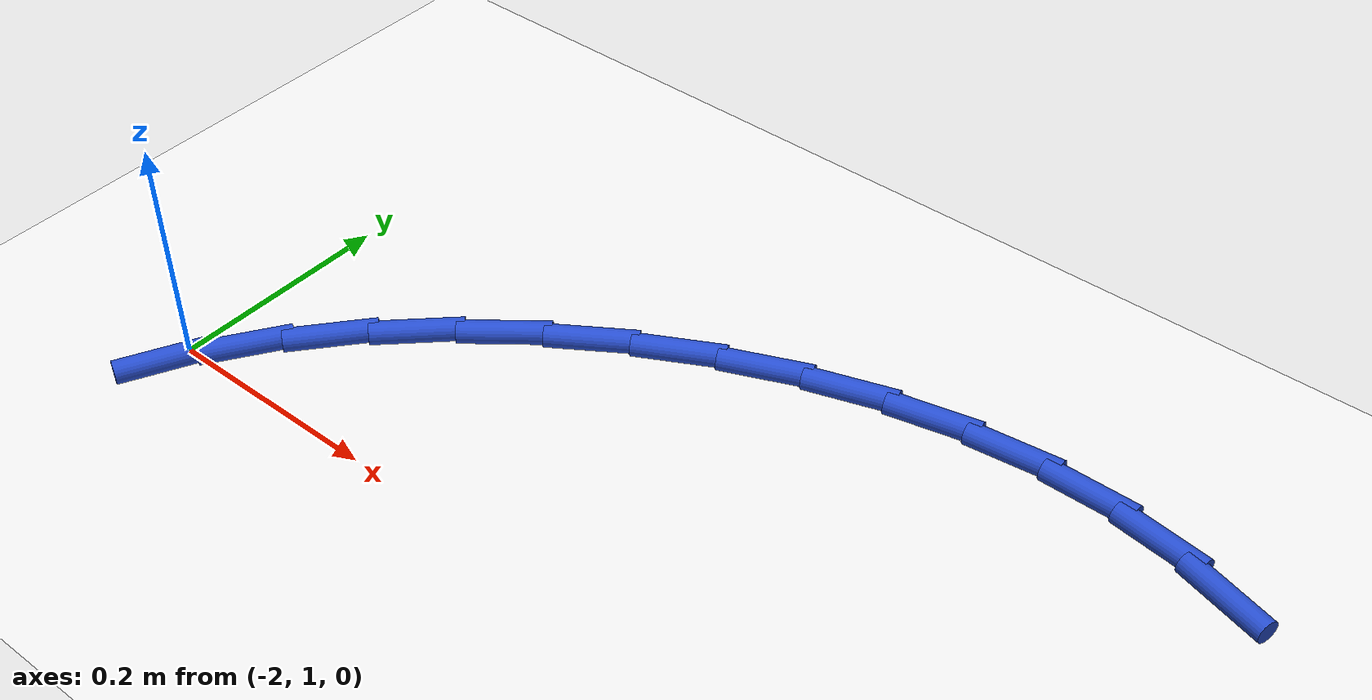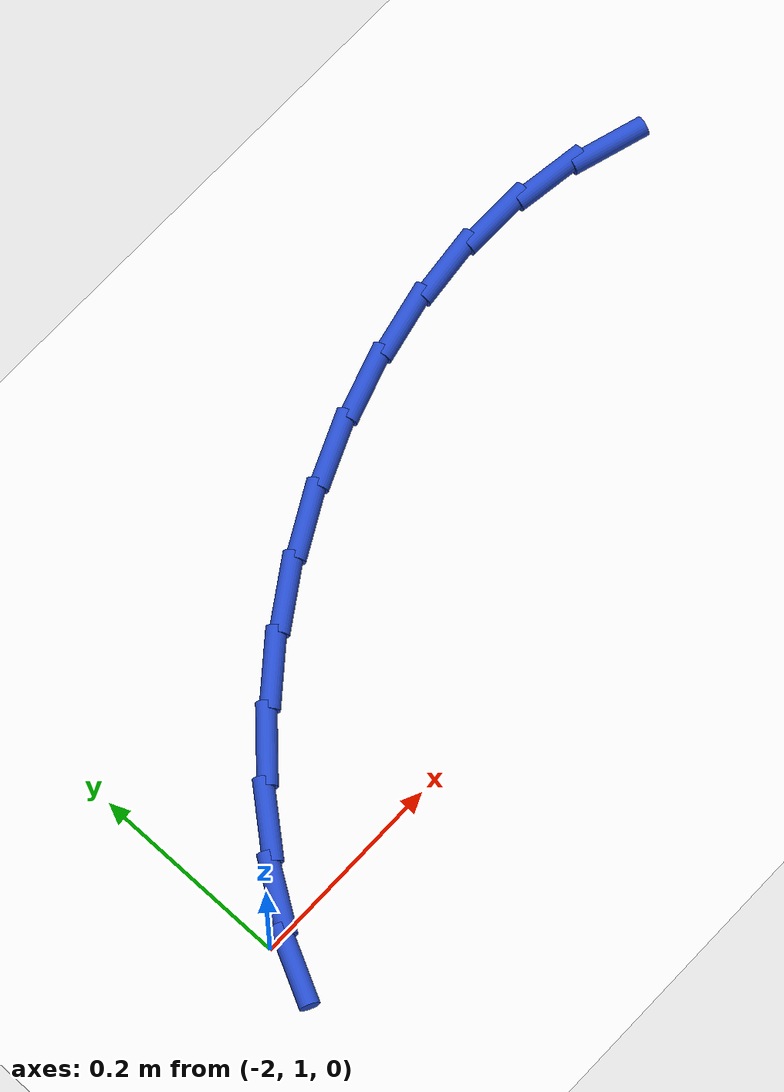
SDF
<sdf version="1.6">
 <world name="default">
  <model name="ground_plane">
   <static>1</static>
   <link name="link">
    <collision name="collision">
     <geometry><plane><normal>0 0 1</normal><size>100 100</size></plane></geometry>
     <surface><friction><ode><mu>100</mu><mu2>50</mu2></ode></friction></surface>
    </collision>
    <visual name="visual">
     <cast_shadows>0</cast_shadows>
     <geometry><plane><normal>0 0 1</normal><size>100 100</size></plane></geometry>
     <material>
      <script><uri>file://media/materials/scripts/gazebo.material</uri><name>Gazebo/WhiteGlow</name></script>
     </material>
    </visual>
   </link>
  </model>
  <model name="line">
   <link name="link_28">
    <pose>-1.214934456292613 1.30064687791949 0.01 0 1.57 -0.2865731552441144</pose>
    <collision name="collision">
     <geometry><cylinder><radius>0.01</radius><length>0.08</length></cylinder></geometry>
    </collision>
    <visual name="visual">
     <material>
      <script><name>Gazebo/Blue</name><uri>file://media/materials/scripts/gazebo.material</uri></script>
     </material>
     <geometry><cylinder><radius>0.01</radius><length>0.08</length></cylinder></geometry>
    </visual>
   </link>
   <link name="link_29">
    <pose>-1.2769515465915877 1.3189223580376288 0.01 0 1.57 -0.13789942864197152</pose>
    <collision name="collision">
     <geometry><cylinder><radius>0.01</radius><length>0.08</length></cylinder></geometry>
    </collision>
    <visual name="visual">
     <material>
      <script><name>Gazebo/Blue</name><uri>file://media/materials/scripts/gazebo.material</uri></script>
     </material>
     <geometry><cylinder><radius>0.01</radius><length>0.08</length></cylinder></geometry>
    </visual>
   </link>
   <link name="link_30">
    <pose>-1.3421095798090168 1.3279650054766332 0.01 0 1.57 -0.0037281577804072477</pose>
    <collision name="collision">
     <geometry><cylinder><radius>0.01</radius><length>0.08</length></cylinder></geometry>
    </collision>
    <visual name="visual">
     <material>
      <script><name>Gazebo/Blue</name><uri>file://media/materials/scripts/gazebo.material</uri></script>
     </material>
     <geometry><cylinder><radius>0.01</radius><length>0.08</length></cylinder></geometry>
    </visual>
   </link>
   <link name="link_31">
    <pose>-1.4095418975516016 1.3282164049614245 0.01 0 1.57 0.11544868533972676</pose>
    <collision name="collision">
     <geometry><cylinder><radius>0.01</radius><length>0.08</length></cylinder></geometry>
    </collision>
    <visual name="visual">
     <material>
      <script><name>Gazebo/Blue</name><uri>file://media/materials/scripts/gazebo.material</uri></script>
     </material>
     <geometry><cylinder><radius>0.01</radius><length>0.08</length></cylinder></geometry>
    </visual>
   </link>
   <link name="link_32">
    <pose>-1.4782892712822224 1.3202441604465511 0.01 0 1.57 0.2224169587491743</pose>
    <collision name="collision">
     <geometry><cylinder><radius>0.01</radius><length>0.08</length></cylinder></geometry>
    </collision>
    <visual name="visual">
     <material>
      <script><name>Gazebo/Blue</name><uri>file://media/materials/scripts/gazebo.material</uri></script>
     </material>
     <geometry><cylinder><radius>0.01</radius><length>0.08</length></cylinder></geometry>
    </visual>
   </link>
   <link name="link_33">
    <pose>-1.547392472463759 1.3046158758865622 0.01 0 1.57 0.3202185071921008</pose>
    <collision name="collision">
     <geometry><cylinder><radius>0.01</radius><length>0.08</length></cylinder></geometry>
    </collision>
    <visual name="visual">
     <material>
      <script><name>Gazebo/Blue</name><uri>file://media/materials/scripts/gazebo.material</uri></script>
     </material>
     <geometry><cylinder><radius>0.01</radius><length>0.08</length></cylinder></geometry>
    </visual>
   </link>
   <link name="link_34">
    <pose>-1.615892272559092 1.2818991552360064 0.01 0 1.57 0.41181518105808146</pose>
    <collision name="collision">
     <geometry><cylinder><radius>0.01</radius><length>0.08</length></cylinder></geometry>
    </collision>
    <visual name="visual">
     <material>
      <script><name>Gazebo/Blue</name><uri>file://media/materials/scripts/gazebo.material</uri></script>
     </material>
     <geometry><cylinder><radius>0.01</radius><length>0.08</length></cylinder></geometry>
    </visual>
   </link>
   <link name="link_35">
    <pose>-1.6828294430311006 1.2526616024494328 0.01 0 1.57 0.5000064020490048</pose>
    <collision name="collision">
     <geometry><cylinder><radius>0.01</radius><length>0.08</length></cylinder></geometry>
    </collision>
    <visual name="visual">
     <material>
      <script><name>Gazebo/Blue</name><uri>file://media/materials/scripts/gazebo.material</uri></script>
     </material>
     <geometry><cylinder><radius>0.01</radius><length>0.08</length></cylinder></geometry>
    </visual>
   </link>
   <link name="link_36">
    <pose>-1.747244755342665 1.2174708214813899 0.01 0 1.57 0.5874751069167591</pose>
    <collision name="collision">
     <geometry><cylinder><radius>0.01</radius><length>0.08</length></cylinder></geometry>
    </collision>
    <visual name="visual">
     <material>
      <script><name>Gazebo/Blue</name><uri>file://media/materials/scripts/gazebo.material</uri></script>
     </material>
     <geometry><cylinder><radius>0.01</radius><length>0.08</length></cylinder></geometry>
    </visual>
   </link>
   <link name="link_37">
    <pose>-1.8081789809566653 1.1768944162864272 0.01 0 1.57 0.676888318982379</pose>
    <collision name="collision">
     <geometry><cylinder><radius>0.01</radius><length>0.08</length></cylinder></geometry>
    </collision>
    <visual name="visual">
     <material>
      <script><name>Gazebo/Blue</name><uri>file://media/materials/scripts/gazebo.material</uri></script>
     </material>
     <geometry><cylinder><radius>0.01</radius><length>0.08</length></cylinder></geometry>
    </visual>
   </link>
   <link name="link_38">
    <pose>-1.8646728913359811 1.1314999908190928 0.01 0 1.57 0.7710102719163604</pose>
    <collision name="collision">
     <geometry><cylinder><radius>0.01</radius><length>0.08</length></cylinder></geometry>
    </collision>
    <visual name="visual">
     <material>
      <script><name>Gazebo/Blue</name><uri>file://media/materials/scripts/gazebo.material</uri></script>
     </material>
     <geometry><cylinder><radius>0.01</radius><length>0.08</length></cylinder></geometry>
    </visual>
   </link>
   <link name="link_39">
    <pose>-1.9157672579434935 1.0818551490339365 0.01 0 1.57 0.8727925145538035</pose>
    <collision name="collision">
     <geometry><cylinder><radius>0.01</radius><length>0.08</length></cylinder></geometry>
    </collision>
    <visual name="visual">
     <material>
      <script><name>Gazebo/Blue</name><uri>file://media/materials/scripts/gazebo.material</uri></script>
     </material>
     <geometry><cylinder><radius>0.01</radius><length>0.08</length></cylinder></geometry>
    </visual>
   </link>
   <link name="link_40">
    <pose>-1.9605028522420813 1.0285274948855065 0.01 0 1.57 0.9853079331373842</pose>
    <collision name="collision">
     <geometry><cylinder><radius>0.01</radius><length>0.08</length></cylinder></geometry>
    </collision>
    <visual name="visual">
     <material>
      <script><name>Gazebo/Blue</name><uri>file://media/materials/scripts/gazebo.material</uri></script>
     </material>
     <geometry><cylinder><radius>0.01</radius><length>0.08</length></cylinder></geometry>
    </visual>
   </link>
   <link name="link_41">
    <pose>-1.9979274270818836 0.9720836713136308 0.01 0 1.57 1.103713335518085</pose>
    <collision name="collision">
     <geometry><cylinder><radius>0.01</radius><length>0.08</length></cylinder></geometry>
    </collision>
    <visual name="visual">
     <material>
      <script><name>Gazebo/Blue</name><uri>file://media/materials/scripts/gazebo.material</uri></script>
     </material>
     <geometry><cylinder><radius>0.01</radius><length>0.08</length></cylinder></geometry>
    </visual>
   </link>
  </model>
 </world>
</sdf>
